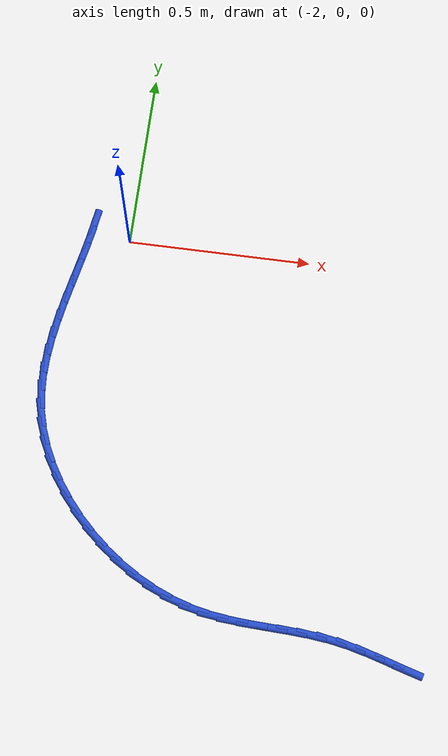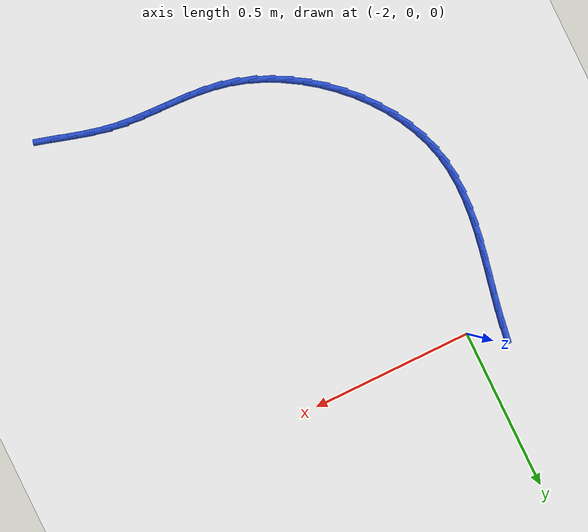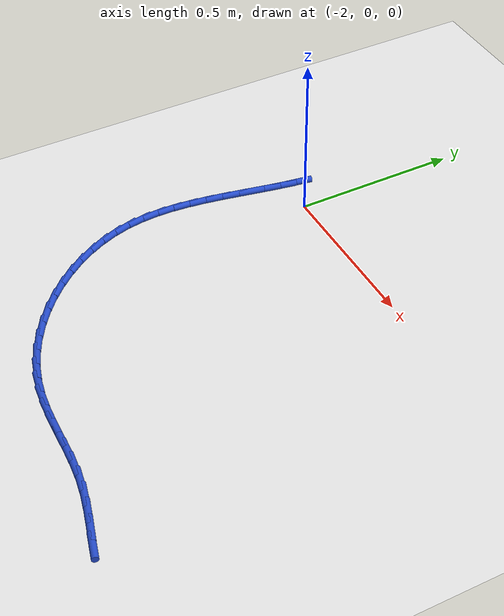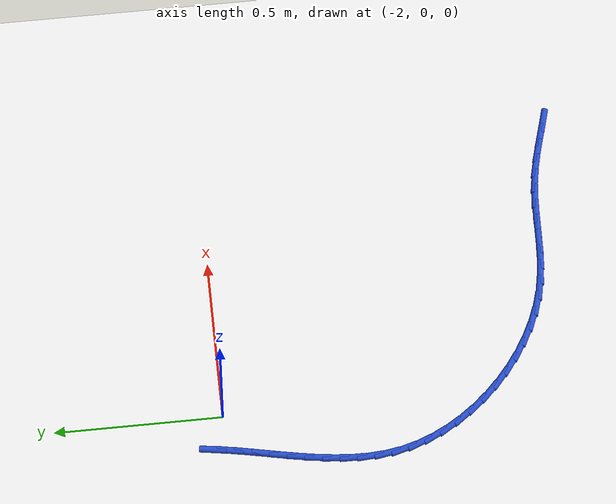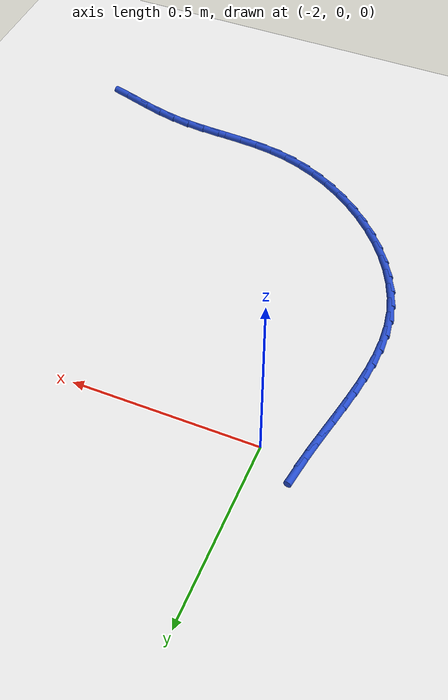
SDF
<sdf version="1.6">
 <world name="default">
  <model name="ground_plane">
   <static>1</static>
   <link name="link">
    <collision name="collision">
     <geometry><plane><normal>0 0 1</normal><size>100 100</size></plane></geometry>
     <surface><friction><ode><mu>100</mu><mu2>50</mu2></ode></friction></surface>
    </collision>
    <visual name="visual">
     <cast_shadows>0</cast_shadows>
     <geometry><plane><normal>0 0 1</normal><size>100 100</size></plane></geometry>
     <material>
      <script><uri>file://media/materials/scripts/gazebo.material</uri><name>Gazebo/WhiteGlow</name></script>
     </material>
    </visual>
   </link>
  </model>
  <model name="line">
   <link name="link_71">
    <pose>-2.1035864912364945 0.03858896552915996 0.01 0 1.57 1.4168421263461002</pose>
    <collision name="collision">
     <geometry><cylinder><radius>0.01</radius><length>0.08</length></cylinder></geometry>
    </collision>
    <visual name="visual">
     <material>
      <script><name>Gazebo/Blue</name><uri>file://media/materials/scripts/gazebo.material</uri></script>
     </material>
     <geometry><cylinder><radius>0.01</radius><length>0.08</length></cylinder></geometry>
    </visual>
   </link>
   <link name="link_72">
    <pose>-2.111350183671395 -0.011440570493667184 0.01 0 1.57 1.3873818870089185</pose>
    <collision name="collision">
     <geometry><cylinder><radius>0.01</radius><length>0.08</length></cylinder></geometry>
    </collision>
    <visual name="visual">
     <material>
      <script><name>Gazebo/Blue</name><uri>file://media/materials/scripts/gazebo.material</uri></script>
     </material>
     <geometry><cylinder><radius>0.01</radius><length>0.08</length></cylinder></geometry>
    </visual>
   </link>
   <link name="link_73">
    <pose>-2.120718017666238 -0.06194123083296717 0.01 0 1.57 1.3719544620900939</pose>
    <collision name="collision">
     <geometry><cylinder><radius>0.01</radius><length>0.08</length></cylinder></geometry>
    </collision>
    <visual name="visual">
     <material>
      <script><name>Gazebo/Blue</name><uri>file://media/materials/scripts/gazebo.material</uri></script>
     </material>
     <geometry><cylinder><radius>0.01</radius><length>0.08</length></cylinder></geometry>
    </visual>
   </link>
   <link name="link_74">
    <pose>-2.1309664979848923 -0.11280101596185248 0.01 0 1.57 1.3699366685773278</pose>
    <collision name="collision">
     <geometry><cylinder><radius>0.01</radius><length>0.08</length></cylinder></geometry>
    </collision>
    <visual name="visual">
     <material>
      <script><name>Gazebo/Blue</name><uri>file://media/materials/scripts/gazebo.material</uri></script>
     </material>
     <geometry><cylinder><radius>0.01</radius><length>0.08</length></cylinder></geometry>
    </visual>
   </link>
   <link name="link_75">
    <pose>-2.141372129391225 -0.16390792635343782 0.01 0 1.57 1.3810894105093694</pose>
    <collision name="collision">
     <geometry><cylinder><radius>0.01</radius><length>0.08</length></cylinder></geometry>
    </collision>
    <visual name="visual">
     <material>
      <script><name>Gazebo/Blue</name><uri>file://media/materials/scripts/gazebo.material</uri></script>
     </material>
     <geometry><cylinder><radius>0.01</radius><length>0.08</length></cylinder></geometry>
    </visual>
   </link>
   <link name="link_76">
    <pose>-2.1512114166491054 -0.2151499624808373 0.01 0 1.57 1.405547931339925</pose>
    <collision name="collision">
     <geometry><cylinder><radius>0.01</radius><length>0.08</length></cylinder></geometry>
    </collision>
    <visual name="visual">
     <material>
      <script><name>Gazebo/Blue</name><uri>file://media/materials/scripts/gazebo.material</uri></script>
     </material>
     <geometry><cylinder><radius>0.01</radius><length>0.08</length></cylinder></geometry>
    </visual>
   </link>
   <link name="link_77">
    <pose>-2.1597608645224016 -0.2664151248171649 0.01 0 1.57 1.443766434038369</pose>
    <collision name="collision">
     <geometry><cylinder><radius>0.01</radius><length>0.08</length></cylinder></geometry>
    </collision>
    <visual name="visual">
     <material>
      <script><name>Gazebo/Blue</name><uri>file://media/materials/scripts/gazebo.material</uri></script>
     </material>
     <geometry><cylinder><radius>0.01</radius><length>0.08</length></cylinder></geometry>
    </visual>
   </link>
   <link name="link_78">
    <pose>-2.166296977774983 -0.31759141383553535 0.01 0 1.57 1.4964021959543494</pose>
    <collision name="collision">
     <geometry><cylinder><radius>0.01</radius><length>0.08</length></cylinder></geometry>
    </collision>
    <visual name="visual">
     <material>
      <script><name>Gazebo/Blue</name><uri>file://media/materials/scripts/gazebo.material</uri></script>
     </material>
     <geometry><cylinder><radius>0.01</radius><length>0.08</length></cylinder></geometry>
    </visual>
   </link>
   <link name="link_79">
    <pose>-2.1700962611707153 -0.3685668300090611 0.01 0 1.57 1.5641059156969679</pose>
    <collision name="collision">
     <geometry><cylinder><radius>0.01</radius><length>0.08</length></cylinder></geometry>
    </collision>
    <visual name="visual">
     <material>
      <script><name>Gazebo/Blue</name><uri>file://media/materials/scripts/gazebo.material</uri></script>
     </material>
     <geometry><cylinder><radius>0.01</radius><length>0.08</length></cylinder></geometry>
    </visual>
   </link>
   <link name="link_80">
    <pose>-2.17043521947347 -0.4192293738108572 0.01 0 1.57 -1.494411788465678</pose>
    <collision name="collision">
     <geometry><cylinder><radius>0.01</radius><length>0.08</length></cylinder></geometry>
    </collision>
    <visual name="visual">
     <material>
      <script><name>Gazebo/Blue</name><uri>file://media/materials/scripts/gazebo.material</uri></script>
     </material>
     <geometry><cylinder><radius>0.01</radius><length>0.08</length></cylinder></geometry>
    </visual>
   </link>
   <link name="link_81">
    <pose>-2.166590357447113 -0.4694670457140372 0.01 0 1.57 -1.3964861609260062</pose>
    <collision name="collision">
     <geometry><cylinder><radius>0.01</radius><length>0.08</length></cylinder></geometry>
    </collision>
    <visual name="visual">
     <material>
      <script><name>Gazebo/Blue</name><uri>file://media/materials/scripts/gazebo.material</uri></script>
     </material>
     <geometry><cylinder><radius>0.01</radius><length>0.08</length></cylinder></geometry>
    </visual>
   </link>
   <link name="link_82">
    <pose>-2.1578381804715 -0.5191678460669644 0.01 0 1.57 -1.289051064081921</pose>
    <collision name="collision">
     <geometry><cylinder><radius>0.01</radius><length>0.08</length></cylinder></geometry>
    </collision>
    <visual name="visual">
     <material>
      <script><name>Gazebo/Blue</name><uri>file://media/materials/scripts/gazebo.material</uri></script>
     </material>
     <geometry><cylinder><radius>0.01</radius><length>0.08</length></cylinder></geometry>
    </visual>
   </link>
   <link name="link_83">
    <pose>-2.14365188190925 -0.5681799412403677 0.01 0 1.57 -1.1869359378796729</pose>
    <collision name="collision">
     <geometry><cylinder><radius>0.01</radius><length>0.08</length></cylinder></geometry>
    </collision>
    <visual name="visual">
     <material>
      <script><name>Gazebo/Blue</name><uri>file://media/materials/scripts/gazebo.material</uri></script>
     </material>
     <geometry><cylinder><radius>0.01</radius><length>0.08</length></cylinder></geometry>
    </visual>
   </link>
   <link name="link_84">
    <pose>-2.124257140176713 -0.6161991015491682 0.01 0 1.57 -1.0926083962046025</pose>
    <collision name="collision">
     <geometry><cylinder><radius>0.01</radius><length>0.08</length></cylinder></geometry>
    </collision>
    <visual name="visual">
     <material>
      <script><name>Gazebo/Blue</name><uri>file://media/materials/scripts/gazebo.material</uri></script>
     </material>
     <geometry><cylinder><radius>0.01</radius><length>0.08</length></cylinder></geometry>
    </visual>
   </link>
   <link name="link_85">
    <pose>-2.1000595582255603 -0.6628846583260227 0.01 0 1.57 -1.0048379849975468</pose>
    <collision name="collision">
     <geometry><cylinder><radius>0.01</radius><length>0.08</length></cylinder></geometry>
    </collision>
    <visual name="visual">
     <material>
      <script><name>Gazebo/Blue</name><uri>file://media/materials/scripts/gazebo.material</uri></script>
     </material>
     <geometry><cylinder><radius>0.01</radius><length>0.08</length></cylinder></geometry>
    </visual>
   </link>
   <link name="link_86">
    <pose>-2.071464739007464 -0.707895942903588 0.01 0 1.57 -0.9222653828259104</pose>
    <collision name="collision">
     <geometry><cylinder><radius>0.01</radius><length>0.08</length></cylinder></geometry>
    </collision>
    <visual name="visual">
     <material>
      <script><name>Gazebo/Blue</name><uri>file://media/materials/scripts/gazebo.material</uri></script>
     </material>
     <geometry><cylinder><radius>0.01</radius><length>0.08</length></cylinder></geometry>
    </visual>
   </link>
   <link name="link_87">
    <pose>-2.038878285474095 -0.7508922866145213 0.01 0 1.57 -0.843503001019867</pose>
    <collision name="collision">
     <geometry><cylinder><radius>0.01</radius><length>0.08</length></cylinder></geometry>
    </collision>
    <visual name="visual">
     <material>
      <script><name>Gazebo/Blue</name><uri>file://media/materials/scripts/gazebo.material</uri></script>
     </material>
     <geometry><cylinder><radius>0.01</radius><length>0.08</length></cylinder></geometry>
    </visual>
   </link>
   <link name="link_88">
    <pose>-2.002705800577126 -0.7915330207914785 0.01 0 1.57 -0.7671788953819187</pose>
    <collision name="collision">
     <geometry><cylinder><radius>0.01</radius><length>0.08</length></cylinder></geometry>
    </collision>
    <visual name="visual">
     <material>
      <script><name>Gazebo/Blue</name><uri>file://media/materials/scripts/gazebo.material</uri></script>
     </material>
     <geometry><cylinder><radius>0.01</radius><length>0.08</length></cylinder></geometry>
    </visual>
   </link>
   <link name="link_89">
    <pose>-1.9633528872682287 -0.8294774767671169 0.01 0 1.57 -0.6919448641054589</pose>
    <collision name="collision">
     <geometry><cylinder><radius>0.01</radius><length>0.08</length></cylinder></geometry>
    </collision>
    <visual name="visual">
     <material>
      <script><name>Gazebo/Blue</name><uri>file://media/materials/scripts/gazebo.material</uri></script>
     </material>
     <geometry><cylinder><radius>0.01</radius><length>0.08</length></cylinder></geometry>
    </visual>
   </link>
   <link name="link_90">
    <pose>-1.9212251484990734 -0.8643849858740933 0.01 0 1.57 -0.6164647147282809</pose>
    <collision name="collision">
     <geometry><cylinder><radius>0.01</radius><length>0.08</length></cylinder></geometry>
    </collision>
    <visual name="visual">
     <material>
      <script><name>Gazebo/Blue</name><uri>file://media/materials/scripts/gazebo.material</uri></script>
     </material>
     <geometry><cylinder><radius>0.01</radius><length>0.08</length></cylinder></geometry>
    </visual>
   </link>
   <link name="link_91">
    <pose>-1.876728187221332 -0.895914879445065 0.01 0 1.57 -0.5393942963771301</pose>
    <collision name="collision">
     <geometry><cylinder><radius>0.01</radius><length>0.08</length></cylinder></geometry>
    </collision>
    <visual name="visual">
     <material>
      <script><name>Gazebo/Blue</name><uri>file://media/materials/scripts/gazebo.material</uri></script>
     </material>
     <geometry><cylinder><radius>0.01</radius><length>0.08</length></cylinder></geometry>
    </visual>
   </link>
   <link name="link_92">
    <pose>-1.8302676063866778 -0.9237264888126883 0.01 0 1.57 -0.45936276100372114</pose>
    <collision name="collision">
     <geometry><cylinder><radius>0.01</radius><length>0.08</length></cylinder></geometry>
    </collision>
    <visual name="visual">
     <material>
      <script><name>Gazebo/Blue</name><uri>file://media/materials/scripts/gazebo.material</uri></script>
     </material>
     <geometry><cylinder><radius>0.01</radius><length>0.08</length></cylinder></geometry>
    </visual>
   </link>
   <link name="link_93">
    <pose>-1.7822490089467806 -0.9474791453096199 0.01 0 1.57 -0.37496510280487455</pose>
    <collision name="collision">
     <geometry><cylinder><radius>0.01</radius><length>0.08</length></cylinder></geometry>
    </collision>
    <visual name="visual">
     <material>
      <script><name>Gazebo/Blue</name><uri>file://media/materials/scripts/gazebo.material</uri></script>
     </material>
     <geometry><cylinder><radius>0.01</radius><length>0.08</length></cylinder></geometry>
    </visual>
   </link>
   <link name="link_94">
    <pose>-1.7330779978533124 -0.9668321802685167 0.01 0 1.57 -0.2847793467812091</pose>
    <collision name="collision">
     <geometry><cylinder><radius>0.01</radius><length>0.08</length></cylinder></geometry>
    </collision>
    <visual name="visual">
     <material>
      <script><name>Gazebo/Blue</name><uri>file://media/materials/scripts/gazebo.material</uri></script>
     </material>
     <geometry><cylinder><radius>0.01</radius><length>0.08</length></cylinder></geometry>
    </visual>
   </link>
   <link name="link_95">
    <pose>-1.6831601760579438 -0.9814449250220361 0.01 0 1.57 -0.1916885359072438</pose>
    <collision name="collision">
     <geometry><cylinder><radius>0.01</radius><length>0.08</length></cylinder></geometry>
    </collision>
    <visual name="visual">
     <material>
      <script><name>Gazebo/Blue</name><uri>file://media/materials/scripts/gazebo.material</uri></script>
     </material>
     <geometry><cylinder><radius>0.01</radius><length>0.08</length></cylinder></geometry>
    </visual>
   </link>
   <link name="link_96">
    <pose>-1.6328531753112432 -0.9912080749695091 0.01 0 1.57 -0.11577559473888611</pose>
    <collision name="collision">
     <geometry><cylinder><radius>0.01</radius><length>0.08</length></cylinder></geometry>
    </collision>
    <visual name="visual">
     <material>
      <script><name>Gazebo/Blue</name><uri>file://media/materials/scripts/gazebo.material</uri></script>
     </material>
     <geometry><cylinder><radius>0.01</radius><length>0.08</length></cylinder></geometry>
    </visual>
   </link>
   <link name="link_97">
    <pose>-1.5822915605900794 -0.9970881717411985 0.01 0 1.57 -0.06446796371600035</pose>
    <collision name="collision">
     <geometry><cylinder><radius>0.01</radius><length>0.08</length></cylinder></geometry>
    </collision>
    <visual name="visual">
     <material>
      <script><name>Gazebo/Blue</name><uri>file://media/materials/scripts/gazebo.material</uri></script>
     </material>
     <geometry><cylinder><radius>0.01</radius><length>0.08</length></cylinder></geometry>
    </visual>
   </link>
   <link name="link_98">
    <pose>-1.5315451080558884 -1.0003642320246557 0.01 0 1.57 -0.038341721684791955</pose>
    <collision name="collision">
     <geometry><cylinder><radius>0.01</radius><length>0.08</length></cylinder></geometry>
    </collision>
    <visual name="visual">
     <material>
      <script><name>Gazebo/Blue</name><uri>file://media/materials/scripts/gazebo.material</uri></script>
     </material>
     <geometry><cylinder><radius>0.01</radius><length>0.08</length></cylinder></geometry>
    </visual>
   </link>
   <link name="link_99">
    <pose>-1.4806835868234316 -1.0023153064934058 0.01 0 1.57 -0.037406591561694166</pose>
    <collision name="collision">
     <geometry><cylinder><radius>0.01</radius><length>0.08</length></cylinder></geometry>
    </collision>
    <visual name="visual">
     <material>
      <script><name>Gazebo/Blue</name><uri>file://media/materials/scripts/gazebo.material</uri></script>
     </material>
     <geometry><cylinder><radius>0.01</radius><length>0.08</length></cylinder></geometry>
    </visual>
   </link>
   <link name="link_100">
    <pose>-1.4297767660074663 -1.0042204458209734 0.01 0 1.57 -0.06159865880947356</pose>
    <collision name="collision">
     <geometry><cylinder><radius>0.01</radius><length>0.08</length></cylinder></geometry>
    </collision>
    <visual name="visual">
     <material>
      <script><name>Gazebo/Blue</name><uri>file://media/materials/scripts/gazebo.material</uri></script>
     </material>
     <geometry><cylinder><radius>0.01</radius><length>0.08</length></cylinder></geometry>
    </visual>
   </link>
   <link name="link_101">
    <pose>-1.3788944147227529 -1.0073587006808824 0.01 0 1.57 -0.11079915069227605</pose>
    <collision name="collision">
     <geometry><cylinder><radius>0.01</radius><length>0.08</length></cylinder></geometry>
    </collision>
    <visual name="visual">
     <material>
      <script><name>Gazebo/Blue</name><uri>file://media/materials/scripts/gazebo.material</uri></script>
     </material>
     <geometry><cylinder><radius>0.01</radius><length>0.08</length></cylinder></geometry>
    </visual>
   </link>
   <link name="link_102">
    <pose>-1.3281063020840511 -1.013009121746658 0.01 0 1.57 -0.18163039551076923</pose>
    <collision name="collision">
     <geometry><cylinder><radius>0.01</radius><length>0.08</length></cylinder></geometry>
    </collision>
    <visual name="visual">
     <material>
      <script><name>Gazebo/Blue</name><uri>file://media/materials/scripts/gazebo.material</uri></script>
     </material>
     <geometry><cylinder><radius>0.01</radius><length>0.08</length></cylinder></geometry>
    </visual>
   </link>
   <link name="link_103">
    <pose>-1.2774801278385344 -1.0223068420630979 0.01 0 1.57 -0.24350185606232624</pose>
    <collision name="collision">
     <geometry><cylinder><radius>0.01</radius><length>0.08</length></cylinder></geometry>
    </collision>
    <visual name="visual">
     <material>
      <script><name>Gazebo/Blue</name><uri>file://media/materials/scripts/gazebo.material</uri></script>
     </material>
     <geometry><cylinder><radius>0.01</radius><length>0.08</length></cylinder></geometry>
    </visual>
   </link>
   <link name="link_104">
    <pose>-1.2270612396346785 -1.0348324805984144 0.01 0 1.57 -0.2791783416830301</pose>
    <collision name="collision">
     <geometry><cylinder><radius>0.01</radius><length>0.08</length></cylinder></geometry>
    </collision>
    <visual name="visual">
     <material>
      <script><name>Gazebo/Blue</name><uri>file://media/materials/scripts/gazebo.material</uri></script>
     </material>
     <geometry><cylinder><radius>0.01</radius><length>0.08</length></cylinder></geometry>
    </visual>
   </link>
   <link name="link_105">
    <pose>-1.176881334483604 -1.0492172999220242 0.01 0 1.57 -0.28941248496057553</pose>
    <collision name="collision">
     <geometry><cylinder><radius>0.01</radius><length>0.08</length></cylinder></geometry>
    </collision>
    <visual name="visual">
     <material>
      <script><name>Gazebo/Blue</name><uri>file://media/materials/scripts/gazebo.material</uri></script>
     </material>
     <geometry><cylinder><radius>0.01</radius><length>0.08</length></cylinder></geometry>
    </visual>
   </link>
   <link name="link_106">
    <pose>-1.1269719141090169 -1.064078981013664 0.01 0 1.57 -0.27424465754227956</pose>
    <collision name="collision">
     <geometry><cylinder><radius>0.01</radius><length>0.08</length></cylinder></geometry>
    </collision>
    <visual name="visual">
     <material>
      <script><name>Gazebo/Blue</name><uri>file://media/materials/scripts/gazebo.material</uri></script>
     </material>
     <geometry><cylinder><radius>0.01</radius><length>0.08</length></cylinder></geometry>
    </visual>
   </link>
  </model>
 </world>
</sdf>
